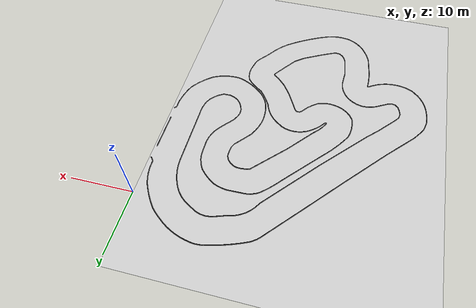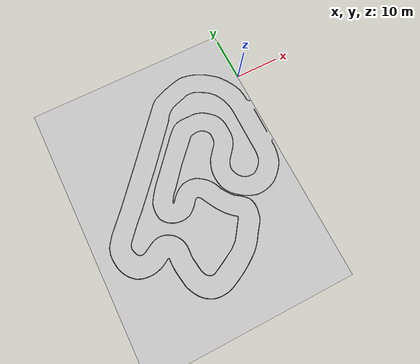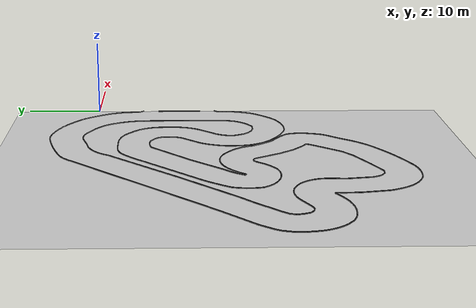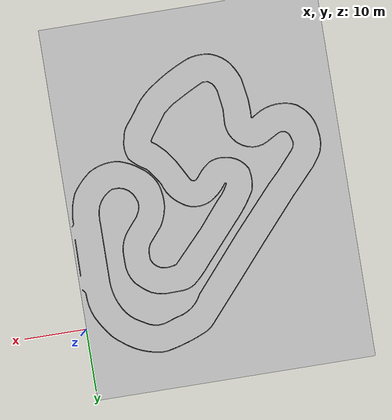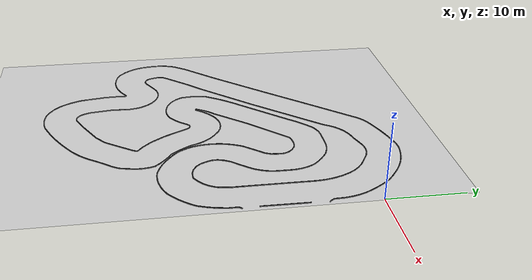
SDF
<?xml version="1.0" ?>
<sdf version="1.6">
  <world name="default">
    <gui>
      <camera name="user_camera">
        <pose frame=''>3.72197 14.5887 17.3139 0 0.564 -2.184</pose>
        <view_controller>orbit</view_controller>
        <projection_type>perspective</projection_type>
      </camera>
    </gui>
    <scene>
      <sky>
        <clouds>
          <speed>12</speed>
        </clouds>
      </sky>
      <ambient>1.0 1.0 1.0 1.0</ambient>
      <shadows>true</shadows>
    </scene>

    <!-- A global light source -->
    <include>
      <uri>model://urdf/models/sun</uri>
    </include>
    <!-- A ground plane -->
    <include>
      <name>blended_plane</name>
      <uri>model://urdf/models/blended_track_ccrf</uri>
      <pose>-22.5 -18.5 0 0 0 0</pose>
    </include>
    <include>
      <name>blended_track</name>
      <uri>model://urdf/models/track_ccrf</uri>
      <pose>-22.5 -18.5 0.0762 0 0 0</pose>
    </include>
  </world>
</sdf>

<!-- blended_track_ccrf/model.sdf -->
<sdf version="1.5">
  <model name="dirt_plane">
    <static>true</static>
    <link name="link">
      <collision name="collision">
        <geometry>
          <plane>
            <normal>0 0 1</normal>
            <size>45 60</size>
          </plane>
        </geometry>
        <surface>
          <friction>
            <ode>
              <mu>100</mu>
              <mu2>50</mu2>
            </ode>
          </friction>
        </surface>
      </collision>
      <visual name="visual">
        <cast_shadows>false</cast_shadows>
        <geometry>
          <plane>
            <normal>0 0 1</normal>
            <size>45 60</size>
          </plane>
        </geometry>
        <material>
          <script>
            <uri>model://urdf/gazebo.material</uri>
            <name>Gazebo/Texture_blend_ccrf</name>
          </script>
        </material>
      </visual>
    </link>
  </model>
</sdf>

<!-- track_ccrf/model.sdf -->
<sdf version="1.5">
  <model name="track">
    <static>true</static>
    <link name="link">
      <visual name="visual">
        <cast_shadows>false</cast_shadows>
        <geometry>
          <mesh>
            <uri>model://urdf/cad/autoRallyTrackCCRF.dae</uri>
            <scale>1.0 1.0 1.0</scale>
          </mesh>
        </geometry>
        <material>
          <script>
            <uri>model://urdf/gazebo.material</uri>
            <name>Gazebo/Black</name>
          </script>
        </material>
      </visual>
    </link>
  </model>
</sdf>
